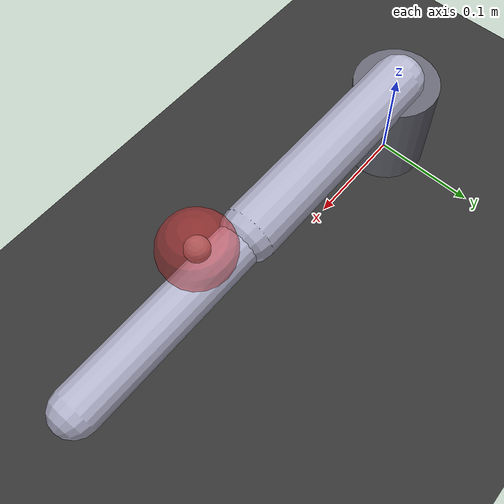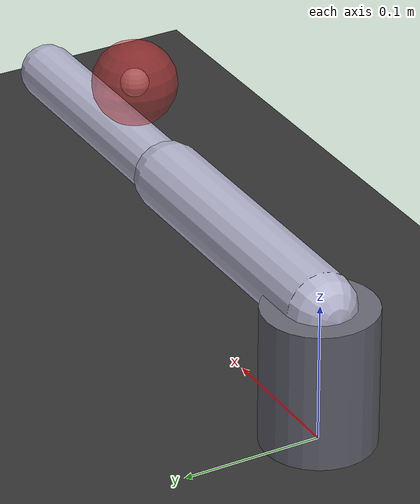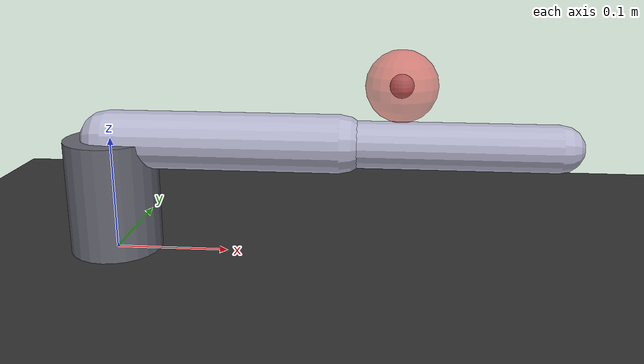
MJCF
<mujoco model="simple_arm">
  <compiler angle="radian" coordinate="local"/>
  <option timestep="0.002" gravity="0 0 -9.81"/>

  <default>
    <joint damping="0.5" armature="0.01" limited="true"/>
    <geom rgba="0.7 0.7 0.8 1" friction="1 0.5 0.5"/>
  </default>

  <worldbody>
    <light pos="0 0 2" dir="0 0 -1"/>
    <geom name="floor" type="plane" size="1 1 0.05" rgba="0.2 0.2 0.2 1"/>

    <!-- The environment moves this marker to each sampled target through mocap_pos. -->
    <body name="target" mocap="true" pos="0.25 0.0 0.15">
      <geom name="target_geom" type="sphere" size="0.03" rgba="0.9 0.2 0.2 0.5" contype="0" conaffinity="0"/>
      <site name="target_site" pos="0 0 0" size="0.01"/>
    </body>

    <body name="base" pos="0 0 0.05">
      <geom name="base_geom" type="cylinder" size="0.04 0.05" rgba="0.4 0.4 0.45 1"/>
      <body name="link1" pos="0 0 0.05">
        <joint name="shoulder" type="hinge" axis="0 1 0" range="-1.57 1.57"/>
        <geom name="link1_geom" type="capsule" fromto="0 0 0 0.2 0 0" size="0.025"/>
        <body name="link2" pos="0.2 0 0">
          <joint name="elbow" type="hinge" axis="0 1 0" range="-2.5 2.5"/>
          <geom name="link2_geom" type="capsule" fromto="0 0 0 0.18 0 0" size="0.02"/>
          <site name="ee_site" pos="0.18 0 0" size="0.015" rgba="0.1 0.8 0.2 1"/>
        </body>
      </body>
    </body>
  </worldbody>

  <actuator>
    <position name="shoulder_act" joint="shoulder" kp="60" ctrlrange="-1.57 1.57"/>
    <position name="elbow_act" joint="elbow" kp="40" ctrlrange="-2.5 2.5"/>
  </actuator>
</mujoco>
